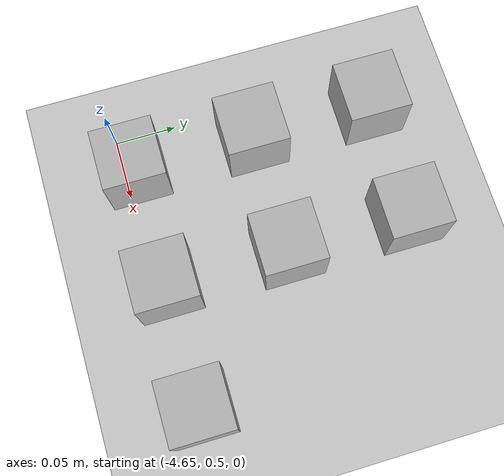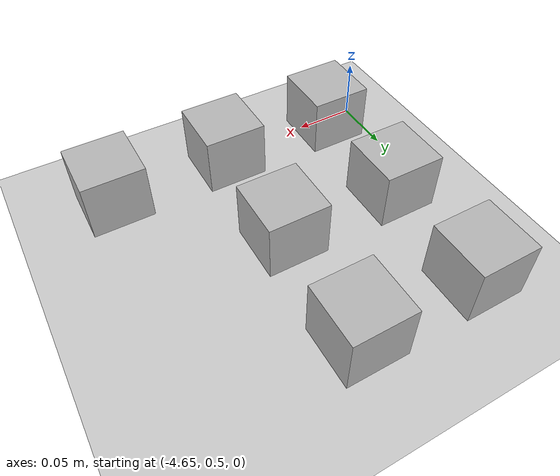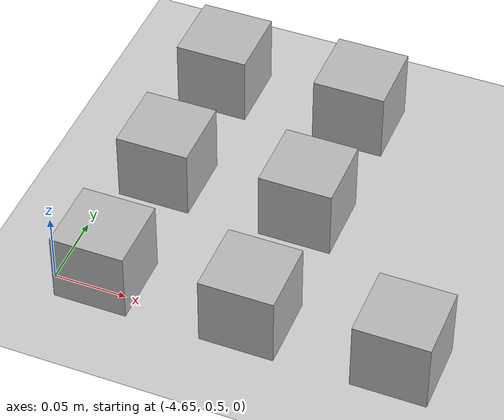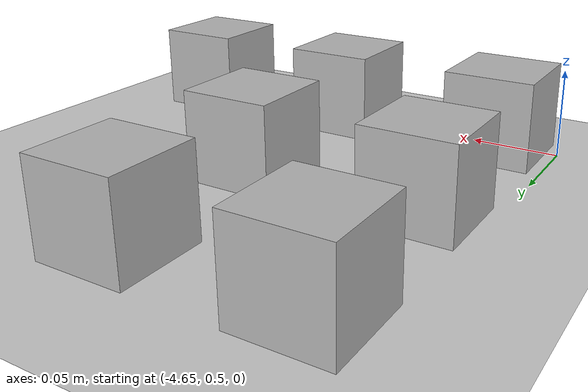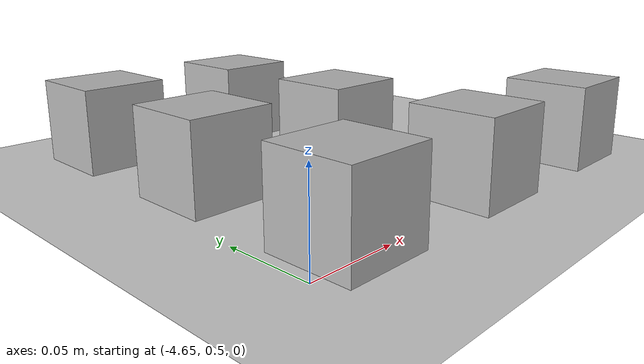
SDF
<sdf version="1.4">
 <world name="default">
  <model name="ground_plane">
   <static>1</static>
   <link name="link">
    <collision name="collision">
     <geometry><plane><normal>0 0 1</normal><size>100 100</size></plane></geometry>
     <surface><friction><ode><mu>100</mu><mu2>50</mu2></ode></friction></surface>
    </collision>
    <visual name="visual">
     <cast_shadows>0</cast_shadows>
     <geometry><plane><normal>0 0 1</normal><size>100 100</size></plane></geometry>
     <material>
      <script><uri>file://media/materials/scripts/gazebo.material</uri><name>Gazebo/Grey</name></script>
     </material>
    </visual>
    <velocity_decay><linear>0</linear><angular>0</angular></velocity_decay>
   </link>
  </model>
  <model name="at4">
   <static>0</static>
   <link name="link">
    <inertial>
     <mass>0.01</mass>
     <inertia><ixx>4e-05</ixx><ixy>0</ixy><ixz>0</ixz><iyy>4e-05</iyy><iyz>0</iyz><izz>4e-05</izz></inertia>
    </inertial>
    <visual name="visual">
     <transparency>0.1</transparency>
     <geometry><box><size>0.05 0.05 0.05</size></box></geometry>
     <material>
      <script>
       <uri>model://at0/materials/scripts</uri>
       <uri>model://at0/materials/textures</uri>
       <name>at0/Diffuse</name>
      </script>
     </material>
    </visual>
    <collision name="collision">
     <geometry><box><size>0.05 0.05 0.05</size></box></geometry>
     <surface><friction><ode><mu>0.8</mu><mu2>0.7</mu2></ode></friction></surface>
    </collision>
    <velocity_decay><linear>0</linear><angular>0</angular></velocity_decay>
   </link>
   <pose>-4.61833 0.509652 0.024997 2.9e-05 2.9e-05 9e-06</pose>
  </model>
  <model name="at5">
   <static>0</static>
   <link name="link">
    <inertial>
     <mass>0.01</mass>
     <inertia><ixx>4e-05</ixx><ixy>0</ixy><ixz>0</ixz><iyy>4e-05</iyy><iyz>0</iyz><izz>4e-05</izz></inertia>
    </inertial>
    <visual name="visual">
     <transparency>0.1</transparency>
     <geometry><box><size>0.05 0.05 0.05</size></box></geometry>
     <material>
      <script>
       <uri>model://at0/materials/scripts</uri>
       <uri>model://at0/materials/textures</uri>
       <name>at0/Diffuse</name>
      </script>
     </material>
    </visual>
    <collision name="collision">
     <geometry><box><size>0.05 0.05 0.05</size></box></geometry>
     <surface><friction><ode><mu>0.8</mu><mu2>0.7</mu2></ode></friction></surface>
    </collision>
    <velocity_decay><linear>0</linear><angular>0</angular></velocity_decay>
   </link>
   <pose>-4.51833 0.509654 0.024993 -2.9e-05 -2.9e-05 9e-06</pose>
  </model>
  <model name="at6">
   <static>0</static>
   <link name="link">
    <inertial>
     <mass>0.01</mass>
     <inertia><ixx>4e-05</ixx><ixy>0</ixy><ixz>0</ixz><iyy>4e-05</iyy><iyz>0</iyz><izz>4e-05</izz></inertia>
    </inertial>
    <visual name="visual">
     <transparency>0.1</transparency>
     <geometry><box><size>0.05 0.05 0.05</size></box></geometry>
     <material>
      <script>
       <uri>model://at0/materials/scripts</uri>
       <uri>model://at0/materials/textures</uri>
       <name>at0/Diffuse</name>
      </script>
     </material>
    </visual>
    <collision name="collision">
     <geometry><box><size>0.05 0.05 0.05</size></box></geometry>
     <surface><friction><ode><mu>0.8</mu><mu2>0.7</mu2></ode></friction></surface>
    </collision>
    <velocity_decay><linear>0</linear><angular>0</angular></velocity_decay>
   </link>
   <pose>-4.41833 0.509652 0.024997 2.9e-05 2.9e-05 8e-06</pose>
  </model>
  <model name="at12">
   <static>0</static>
   <link name="link">
    <inertial>
     <mass>0.01</mass>
     <inertia><ixx>4e-05</ixx><ixy>0</ixy><ixz>0</ixz><iyy>4e-05</iyy><iyz>0</iyz><izz>4e-05</izz></inertia>
    </inertial>
    <visual name="visual">
     <transparency>0.1</transparency>
     <geometry><box><size>0.05 0.05 0.05</size></box></geometry>
     <material>
      <script>
       <uri>model://at0/materials/scripts</uri>
       <uri>model://at0/materials/textures</uri>
       <name>at0/Diffuse</name>
      </script>
     </material>
    </visual>
    <collision name="collision">
     <geometry><box><size>0.05 0.05 0.05</size></box></geometry>
     <surface><friction><ode><mu>0.8</mu><mu2>0.7</mu2></ode></friction></surface>
    </collision>
    <velocity_decay><linear>0</linear><angular>0</angular></velocity_decay>
   </link>
   <pose>-4.61833 0.609653 0.024993 -2.9e-05 -2.9e-05 8e-06</pose>
  </model>
  <model name="at13">
   <static>0</static>
   <link name="link">
    <inertial>
     <mass>0.01</mass>
     <inertia><ixx>4e-05</ixx><ixy>0</ixy><ixz>0</ixz><iyy>4e-05</iyy><iyz>0</iyz><izz>4e-05</izz></inertia>
    </inertial>
    <visual name="visual">
     <transparency>0.1</transparency>
     <geometry><box><size>0.05 0.05 0.05</size></box></geometry>
     <material>
      <script>
       <uri>model://at0/materials/scripts</uri>
       <uri>model://at0/materials/textures</uri>
       <name>at0/Diffuse</name>
      </script>
     </material>
    </visual>
    <collision name="collision">
     <geometry><box><size>0.05 0.05 0.05</size></box></geometry>
     <surface><friction><ode><mu>0.8</mu><mu2>0.7</mu2></ode></friction></surface>
    </collision>
    <velocity_decay><linear>0</linear><angular>0</angular></velocity_decay>
   </link>
   <pose>-4.51833 0.609652 0.024997 2.9e-05 2.9e-05 7e-06</pose>
  </model>
  <model name="at20">
   <static>0</static>
   <link name="link">
    <inertial>
     <mass>0.01</mass>
     <inertia><ixx>4e-05</ixx><ixy>0</ixy><ixz>0</ixz><iyy>4e-05</iyy><iyz>0</iyz><izz>4e-05</izz></inertia>
    </inertial>
    <visual name="visual">
     <transparency>0.1</transparency>
     <geometry><box><size>0.05 0.05 0.05</size></box></geometry>
     <material>
      <script>
       <uri>model://at0/materials/scripts</uri>
       <uri>model://at0/materials/textures</uri>
       <name>at0/Diffuse</name>
      </script>
     </material>
    </visual>
    <collision name="collision">
     <geometry><box><size>0.05 0.05 0.05</size></box></geometry>
     <surface><friction><ode><mu>0.8</mu><mu2>0.7</mu2></ode></friction></surface>
    </collision>
    <velocity_decay><linear>0</linear><angular>0</angular></velocity_decay>
   </link>
   <pose>-4.61833 0.709653 0.024993 -2.9e-05 -2.9e-05 7e-06</pose>
  </model>
  <model name="at21">
   <static>0</static>
   <link name="link">
    <inertial>
     <mass>0.01</mass>
     <inertia><ixx>4e-05</ixx><ixy>0</ixy><ixz>0</ixz><iyy>4e-05</iyy><iyz>0</iyz><izz>4e-05</izz></inertia>
    </inertial>
    <visual name="visual">
     <transparency>0.1</transparency>
     <geometry><box><size>0.05 0.05 0.05</size></box></geometry>
     <material>
      <script>
       <uri>model://at0/materials/scripts</uri>
       <uri>model://at0/materials/textures</uri>
       <name>at0/Diffuse</name>
      </script>
     </material>
    </visual>
    <collision name="collision">
     <geometry><box><size>0.05 0.05 0.05</size></box></geometry>
     <surface><friction><ode><mu>0.8</mu><mu2>0.7</mu2></ode></friction></surface>
    </collision>
    <velocity_decay><linear>0</linear><angular>0</angular></velocity_decay>
   </link>
   <pose>-4.51833 0.709653 0.024993 -2.9e-05 -2.9e-05 7e-06</pose>
  </model>
 </world>
</sdf>
